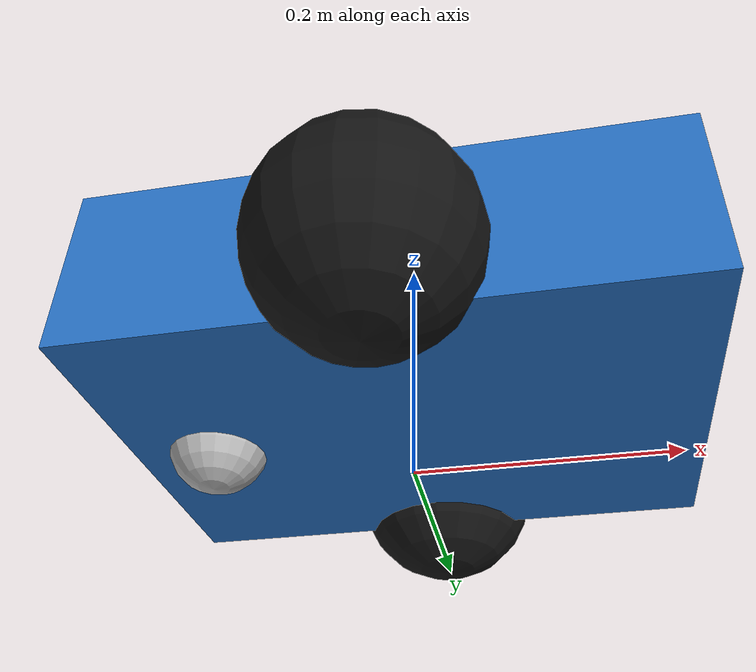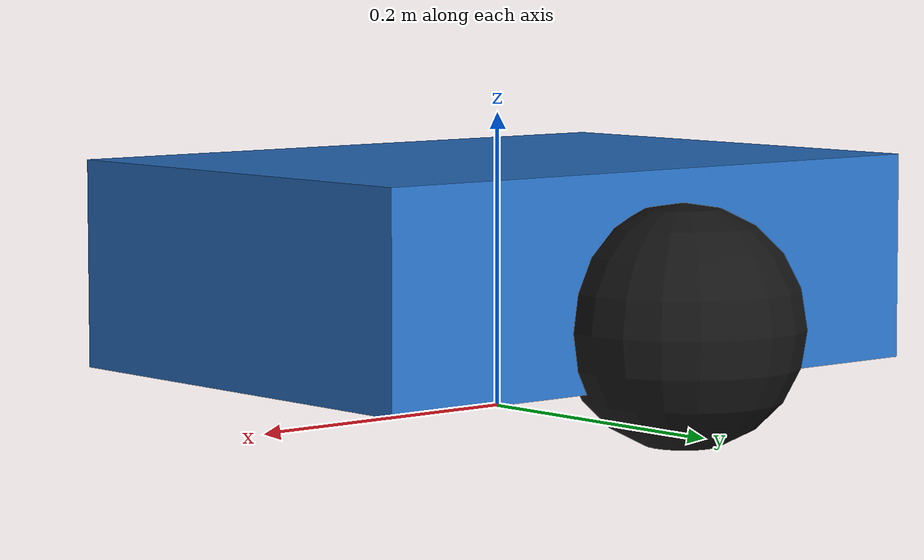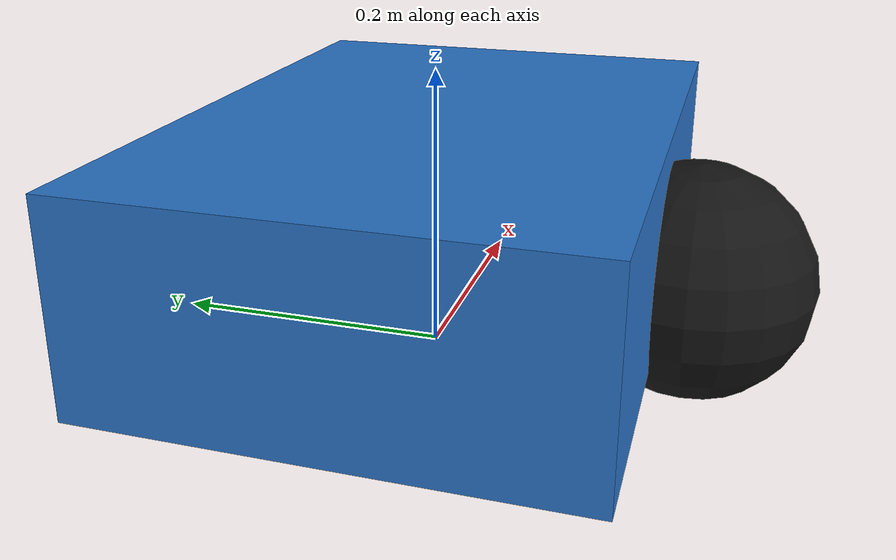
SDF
<?xml version="1.0" ?>
<sdf version="1.8">
  <model name="firescout_bot">
    <static>false</static>

    <link name="chassis">
      <pose>0 0 0.10 0 0 0</pose>
      <inertial>
        <mass>3.0</mass>
        <inertia>
          <ixx>0.08</ixx>
          <ixy>0.0</ixy>
          <ixz>0.0</ixz>
          <iyy>0.08</iyy>
          <iyz>0.0</iyz>
          <izz>0.10</izz>
        </inertia>
      </inertial>

      <visual name="chassis_visual">
        <geometry>
          <box>
            <size>0.45 0.32 0.14</size>
          </box>
        </geometry>
        <material>
          <ambient>0.16 0.45 0.78 1</ambient>
          <diffuse>0.16 0.45 0.78 1</diffuse>
          <specular>0.05 0.05 0.05 1</specular>
        </material>
      </visual>

      <collision name="chassis_collision">
        <geometry>
          <box>
            <size>0.45 0.32 0.14</size>
          </box>
        </geometry>
      </collision>

      <sensor type="gpu_lidar" name="lidar">
        <pose>0 0 0.2 0 0 0</pose>
        <topic>~/lidar</topic>
        <update_rate>10</update_rate>
        <always_on>true</always_on>
        <visualize>true</visualize>
        <ray>
          <scan>
            <horizontal>
              <samples>360</samples>
              <resolution>1</resolution>
              <min_angle>-3.141592653589793</min_angle>
              <max_angle>3.141592653589793</max_angle>
            </horizontal>
          </scan>
          <range>
            <min>0.12</min>
            <max>12.0</max>
            <resolution>0.01</resolution>
          </range>
        </ray>
      </sensor>
    </link>

    <link name="left_wheel">
      <pose>0.0 0.18 0.07 0 0 0</pose>
      <inertial>
        <mass>0.6</mass>
        <inertia>
          <ixx>0.004</ixx>
          <ixy>0.0</ixy>
          <ixz>0.0</ixz>
          <iyy>0.004</iyy>
          <iyz>0.0</iyz>
          <izz>0.004</izz>
        </inertia>
      </inertial>
      <visual name="left_wheel_visual">
        <geometry>
          <sphere>
            <radius>0.08</radius>
          </sphere>
        </geometry>
        <material>
          <ambient>0.08 0.08 0.08 1</ambient>
          <diffuse>0.08 0.08 0.08 1</diffuse>
        </material>
      </visual>
      <collision name="left_wheel_collision">
        <geometry>
          <sphere>
            <radius>0.08</radius>
          </sphere>
        </geometry>
      </collision>
    </link>

    <link name="right_wheel">
      <pose>0.0 -0.18 0.07 0 0 0</pose>
      <inertial>
        <mass>0.6</mass>
        <inertia>
          <ixx>0.004</ixx>
          <ixy>0.0</ixy>
          <ixz>0.0</ixz>
          <iyy>0.004</iyy>
          <iyz>0.0</iyz>
          <izz>0.004</izz>
        </inertia>
      </inertial>
      <visual name="right_wheel_visual">
        <geometry>
          <sphere>
            <radius>0.08</radius>
          </sphere>
        </geometry>
        <material>
          <ambient>0.08 0.08 0.08 1</ambient>
          <diffuse>0.08 0.08 0.08 1</diffuse>
        </material>
      </visual>
      <collision name="right_wheel_collision">
        <geometry>
          <sphere>
            <radius>0.08</radius>
          </sphere>
        </geometry>
      </collision>
    </link>

    <link name="caster">
      <pose>-0.16 0.0 0.04 0 0 0</pose>
      <inertial>
        <mass>0.2</mass>
        <inertia>
          <ixx>0.001</ixx>
          <ixy>0.0</ixy>
          <ixz>0.0</ixz>
          <iyy>0.001</iyy>
          <iyz>0.0</iyz>
          <izz>0.001</izz>
        </inertia>
      </inertial>
      <visual name="caster_visual">
        <geometry>
          <sphere>
            <radius>0.04</radius>
          </sphere>
        </geometry>
      </visual>
      <collision name="caster_collision">
        <geometry>
          <sphere>
            <radius>0.04</radius>
          </sphere>
        </geometry>
      </collision>
    </link>

    <joint name="left_wheel_joint" type="revolute">
      <parent>chassis</parent>
      <child>left_wheel</child>
      <axis>
        <xyz>0 1 0</xyz>
        <limit>
          <lower>-1.79769e+308</lower>
          <upper>1.79769e+308</upper>
        </limit>
      </axis>
    </joint>

    <joint name="right_wheel_joint" type="revolute">
      <parent>chassis</parent>
      <child>right_wheel</child>
      <axis>
        <xyz>0 1 0</xyz>
        <limit>
          <lower>-1.79769e+308</lower>
          <upper>1.79769e+308</upper>
        </limit>
      </axis>
    </joint>

    <joint name="caster_joint" type="ball">
      <parent>chassis</parent>
      <child>caster</child>
    </joint>

    <plugin
      filename="gz-sim-diff-drive-system"
      name="gz::sim::systems::DiffDrive">
      <left_joint>left_wheel_joint</left_joint>
      <right_joint>right_wheel_joint</right_joint>
      <wheel_separation>0.36</wheel_separation>
      <wheel_radius>0.08</wheel_radius>
      <odom_publish_frequency>10</odom_publish_frequency>
      <max_linear_velocity>0.6</max_linear_velocity>
      <min_linear_velocity>-0.6</min_linear_velocity>
      <max_angular_velocity>1.5</max_angular_velocity>
      <min_angular_velocity>-1.5</min_angular_velocity>
      <max_linear_acceleration>1.0</max_linear_acceleration>
      <max_angular_acceleration>2.0</max_angular_acceleration>
      <publish_tf>true</publish_tf>
      <publish_odom>true</publish_odom>
    </plugin>
  </model>
</sdf>
